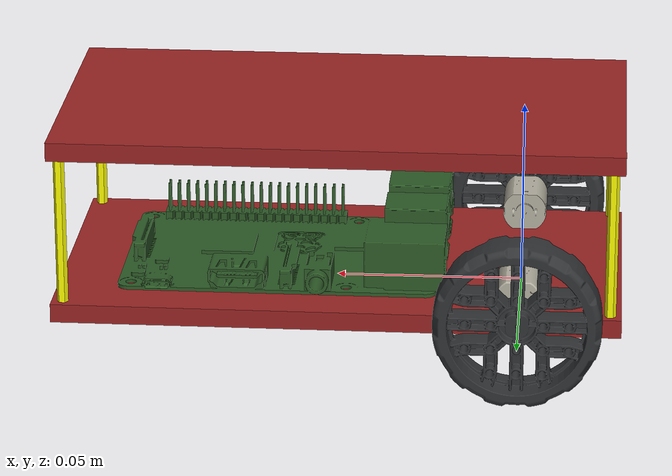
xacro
<?xml version="1.0" encoding="UTF-8"?>
<robot xmlns:xacro="http://www.ros.org/wiki/xacro">

    <xacro:include filename="$(find novelbot_description)/urdf/materials.xacro"/>
    <xacro:include filename="$(find novelbot_description)/urdf/novel_properties.xacro"/>
    <xacro:include filename="$(find novelbot_description)/urdf/inertial_macros.xacro"/>
    <xacro:include filename="$(find novelbot_description)/urdf/component_macros.xacro"/>

    <xacro:include filename="$(find novelbot_description)/urdf/base_layer.xacro"/>
    <xacro:include filename="$(find novelbot_description)/urdf/first_layer.xacro"/>
    <xacro:include filename="$(find novelbot_description)/urdf/electronics.xacro"/>

</robot>

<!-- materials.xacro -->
<robot xmlns:xacro="http://ros.org/wiki/xacro">
    <xacro:include filename="$(find novelbot_description)/urdf/colours.xacro"/>

    <xacro:macro name="material_orange">
        <material name="">
            <color rgba="${orange}"/>
        </material>
    </xacro:macro>

    <xacro:macro name="material_graphite_white">
        <material name="">
            <color rgba="${graphite_white}"/>
        </material>
    </xacro:macro>

    <xacro:macro name="material_white">
        <material name="">
            <color rgba="${white}"/>
        </material>
    </xacro:macro>

    <xacro:macro name="material_pebble_gray">
        <material name="">
            <color rgba="${pebble_gray}"/>
        </material>
    </xacro:macro>

    <xacro:macro name="material_dark_gray">
        <material name="">
            <color rgba="${dark_gray}"/>
        </material>
    </xacro:macro>

    <xacro:macro name="material_black">
        <material name="">
            <color rgba="${black}"/>
        </material>
    </xacro:macro>

    <xacro:macro name="material_signal_red">
        <material name="">
            <color rgba="${signal_red}"/>
        </material>
    </xacro:macro>

    <xacro:macro name="material_carmine_red">
        <material name="">
            <color rgba="${carmine_red}"/>
        </material>
    </xacro:macro>

    <xacro:macro name="material_ultramarine_blue">
        <material name="">
            <color rgba="${ultramarine_blue}"/>
        </material>
    </xacro:macro>

    <xacro:macro name="material_sky_blue">
        <material name="">
            <color rgba="${sky_blue}"/>
        </material>
    </xacro:macro>

    <xacro:macro name="material_leaf_green">
        <material name="">
            <color rgba="${leaf_green}"/>
        </material>
    </xacro:macro>

    <xacro:macro name="material_olive_green">
        <material name="">
            <color rgba="${olive_green}"/>
        </material>
    </xacro:macro>

    <xacro:macro name="material_gray_white">
        <material name="">
            <color rgba="${gray_white}"/>
        </material>
    </xacro:macro>

    <xacro:macro name="material_pure_white">
        <material name="">
            <color rgba="${pure_white}"/>
        </material>
    </xacro:macro>

    <xacro:macro name="material_yellow">
        <material name="">
            <color rgba="${yellow}"/>
        </material>
    </xacro:macro>

</robot>

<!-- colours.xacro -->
<robot xmlns:xacro="http://ros.org/wiki/xacro">

    <xacro:property name="orange" value="0.7372549 0.3490196 0.1607843 1" />

    <xacro:property name="graphite_white" value="0.7725490 0.7803922 0.7686275 1" />

    <xacro:property name="white" value="0.9254902 0.9254902 0.9058824 1" />

    <xacro:property name="pebble_gray" value="0.7058823 0.6901961 0.6313725 1" />

    <xacro:property name="dark_gray" value="0.3450980 0.3647059 0.3686275 1" />

    <xacro:property name="black" value="0.1882353 0.1960784 0.2039216 1" />

    <xacro:property name="signal_red" value="0.5960784 0.1372549 0.1372549 1" />

    <xacro:property name="carmine_red" value="0.5960784 0.1333333 0.1333333 1" />

    <xacro:property name="ultramarine_blue" value="0.1176471 0.2117647 0.4823529 1" />

    <xacro:property name="sky_blue" value="0.0431373 0.4823529 0.6901961 1" />

    <xacro:property name="leaf_green" value="0.1764706 0.3529412 0.1529412 1" />

    <xacro:property name="olive_green" value="${ 80/255} ${ 83/255} ${ 60/255} 1" />

    <xacro:property name="gray_white" value="0.8392157 0.8352941 0.7921569 1" />

    <xacro:property name="pure_white" value="0.9411765 0.9294118 0.8823529 1" />

    <xacro:property name="yellow" value="1 1 0 1" />

</robot>

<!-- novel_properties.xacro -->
<robot xmlns:xacro="http://www.ros.org/wiki/xacro">

    <xacro:property name="chassis_length" value="0.15"/>
    <xacro:property name="chassis_width" value="0.08"/>
    <xacro:property name="chassis_height" value="0.005"/>
    <xacro:property name="chassis_mass" value="0.5"/>

    <xacro:property name="motor_length" value="0.016"/>
    <xacro:property name="motor_width" value="0.012"/>
    <xacro:property name="motor_height" value="0.01"/>
    <xacro:property name="motor_gear_offset" value="0.003209"/>
    <xacro:property name="motor_mass" value="0.012"/>

    <xacro:property name="wheel_diameter" value="0.044"/>
    <xacro:property name="wheel_width" value="0.0133"/>
    <xacro:property name="wheel_mass" value="0.018"/>

    <xacro:property name="caster_height" value="0.13"/>
    <xacro:property name="caster_width" value="0.0156"/>
    <xacro:property name="caster_ball_diameter" value="0.011"/>
    <xacro:property name="caster_mass" value="0.01"/>

    <xacro:property name="standoff_height" value="0.04"/>
    <xacro:property name="standoff_width" value="0.003"/>
    <xacro:property name="standoff_mass" value="0.00875"/>

    <xacro:property name="rpi_lenght" value="0.085"/>
    <xacro:property name="rpi_width" value="0.056"/>
    <xacro:property name="rpi_height" value="0.017"/>
    <xacro:property name="rpi_mass" value="0.046"/>
</robot>

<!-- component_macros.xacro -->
<robot xmlns:xacro="http://www.ros.org/wiki/xacro">

    <xacro:macro name="standoff" params="name parent *origin">

        <joint name="${name}_joint" type="fixed">
            <xacro:insert_block name="origin"/>
            <parent link="${parent}" />
            <child link="${name}" />
        </joint>

        <link name="${name}">

            <visual>
                <origin xyz="0 0 0"/>
                <geometry>
                    <mesh filename="package://novelbot_description/meshes/visual/standoff_spacer.stl"/>
                </geometry>
                <xacro:material_yellow />
            </visual>

            <collision>
                <origin xyz="0 0 0"/>
                <geometry>
                    <mesh filename="package://novelbot_description/meshes/visual/standoff_spacer.stl"/>
                </geometry>
            </collision>

            <xacro:inertial_cylinder mass="${standoff_mass}" length="${standoff_width}" radius="${standoff_height}">
                <origin xyz="0 0 0"/>
            </xacro:inertial_cylinder>
        </link>
    </xacro:macro>

    <xacro:macro name="wheel_set" params="side parent *origin *axis">

        <!-- MOTOR -->
        <joint name="${side}motor_joint" type="fixed">
            <xacro:insert_block name="origin"/>
            <parent link="${parent}" />
            <child link="${side}_motor" />
        </joint>

        <link name="${side}_motor">
            <visual>
                <geometry>
                    <mesh filename="package://novelbot_description/meshes/visual/n20_motor.stl"/>
                </geometry>
                <xacro:material_pebble_gray />
            </visual>
            <collision>
                <origin xyz="0 0 0"/>
                <geometry>
                    <mesh filename="package://novelbot_description/meshes/visual/n20_motor.stl"/>
                </geometry>
            </collision>
            <xacro:inertial_cylinder mass="${motor_mass}" length="${motor_length}" radius="${motor_width}">
                <origin xyz="0 0 0"/>
            </xacro:inertial_cylinder>
        </link>

        <!-- WHEEL -->
        <joint name="${side}_wheel_joint" type="continuous">
            <origin xyz="0 ${motor_length+wheel_width/2 -0.001} ${motor_gear_offset}" rpy="0 0 0"/>
            <parent link="${side}_motor" />
            <child link="${side}_wheel" />
            <xacro:insert_block name="axis"/>
        </joint>

        <link name="${side}_wheel">
            <visual>
                <geometry>
                    <mesh filename="package://novelbot_description/meshes/visual/n20_motor_wheel.stl"/>
                </geometry>
                <xacro:material_black />
            </visual>
            <collision>
                <origin xyz="0 0 0"/>
                <geometry>
                    <mesh filename="package://novelbot_description/meshes/visual/n20_motor_wheel.stl"/>
                </geometry>
            </collision>
            <xacro:inertial_cylinder mass="${wheel_mass}" length="${wheel_width}" radius="${wheel_diameter/2}">
                <origin xyz="0 0 0"/>
            </xacro:inertial_cylinder>
        </link>
    </xacro:macro>

</robot>

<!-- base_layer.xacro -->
<robot xmlns:xacro="http://www.ros.org/wiki/xacro">

    <!-- BASE LINK -->
    <link name="base_link" />

    <!-- ************************ BASE LAYER ************************ -->
    <joint name="bl_joint" type="fixed">
        <origin xyz="-${wheel_diameter/2 + 0.005} 0 0"/>
        <parent link="base_link" />
        <child link="base_layer_chassis" />
    </joint>

    <link name="base_layer_chassis">
        <visual>
            <origin xyz="${chassis_length/2} 0 ${chassis_height/2}"/>
            <geometry>
                <box size="${chassis_length} ${chassis_width} ${chassis_height}"/>
            </geometry>
            <xacro:material_signal_red />
        </visual>
        <collision>
            <origin xyz="${chassis_length/2} 0 ${chassis_height/2}"/>
            <geometry>
                <box size="${chassis_length} ${chassis_width} ${chassis_height}"/>
            </geometry>
        </collision>
        <xacro:inertial_box mass="${chassis_mass}" x="${chassis_length}" y="${chassis_width}" z="${chassis_height}">
            <origin xyz="${chassis_length/2} 0 ${chassis_height/2}"/>
        </xacro:inertial_box>
    </link>

    <!-- ************************ WHEEL ************************ -->
    <!-- LEFT MOTOR -->
    <xacro:wheel_set side="left" parent="base_link">
        <origin xyz="0 ${chassis_width/2-motor_length+0.001} ${chassis_height + motor_height/2}" rpy="0 ${pi} 0"/>
        <axis xyz="0 1 0"/>
    </xacro:wheel_set>

    <!-- RIGHT MOTOR -->
    <xacro:wheel_set side="right" parent="base_link">
        <origin xyz="0 -${chassis_width/2-motor_length+0.001} ${chassis_height + motor_height/2}" rpy="${pi} 0 0"/>
        <axis xyz="0 -1 0"/>
    </xacro:wheel_set>

    <!-- ************************ CASTER ************************ -->
    <!-- CASTER BASE -->
    <joint name="caster_base_joint" type="fixed">
        <origin xyz="${chassis_length-wheel_diameter/2 -caster_width} 0 0" rpy="${pi/2} 0 ${pi/2}"/>
        <parent link="base_link" />
        <child link="caster_base" />
    </joint>

    <link name="caster_base">
        <visual>
            <origin xyz="0 0 0"/>
            <geometry>
                <mesh filename="package://novelbot_description/meshes/visual/caster_base.stl"/>
            </geometry>
            <xacro:material_white />
        </visual>
        <collision>
            <origin xyz="0 0 0"/>
            <geometry>
                <mesh filename="package://novelbot_description/meshes/visual/caster_base.stl"/>
            </geometry>
        </collision>
        <xacro:inertial_cylinder mass="${caster_mass/2}" length="${caster_height}" radius="${caster_width}">
            <origin xyz="0 0 0"/>
        </xacro:inertial_cylinder>
    </link>

    <!-- CASTER WHEEL -->
    <joint name="caster_wheel_joint" type="fixed">
        <origin xyz="0 0 0" rpy="0 0 0"/>
        <parent link="caster_base" />
        <child link="caster_wheel" />
    </joint>

    <link name="caster_wheel">
        <visual>
            <origin xyz="0 0 0"/>
            <geometry>
                <mesh filename="package://novelbot_description/meshes/visual/caster_wheel.stl"/>
            </geometry>
            <xacro:material_dark_gray />
        </visual>

        <collision>
            <origin xyz="0 0 0"/>
            <geometry>
                <mesh filename="package://novelbot_description/meshes/visual/caster_wheel.stl"/>
            </geometry>
        </collision>

        <xacro:inertial_sphere mass="${caster_mass/2}" radius="${caster_ball_diameter/2}">
            <origin xyz="0 0 0"/>
        </xacro:inertial_sphere>
    </link>

    <!-- ************************ STANDOFFS ************************ -->
    <xacro:standoff name="bl_standoff" parent="base_link">
        <origin xyz="-${wheel_diameter/2 + 0.005 - standoff_width} ${chassis_width/2-standoff_width} ${chassis_height}" rpy="0 0 0"/>
    </xacro:standoff>

    <xacro:standoff name="br_standoff" parent="base_link">
        <origin xyz="-${wheel_diameter/2 + 0.005 - standoff_width} -${chassis_width/2-standoff_width} ${chassis_height}" rpy="0 0 0"/>
    </xacro:standoff>

    <xacro:standoff name="fr_standoff" parent="base_link">
        <origin xyz="${chassis_length - wheel_diameter/2 -  0.005 - standoff_width} ${chassis_width/2-standoff_width} ${chassis_height}" rpy="0 0 0"/>
    </xacro:standoff>

    <xacro:standoff name="fl_standoff" parent="base_link">
        <origin xyz="${chassis_length - wheel_diameter/2 -  0.005 - standoff_width} -${chassis_width/2-standoff_width} ${chassis_height}" rpy="0 0 0"/>
    </xacro:standoff>

</robot>

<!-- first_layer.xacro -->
<robot xmlns:xacro="http://www.ros.org/wiki/xacro">

    <!-- CHASSIS -->
    <joint name="fl_joint" type="fixed">
        <origin xyz="0 0 ${standoff_height+chassis_height}"/>
        <parent link="base_link" />
        <child link="fl_link" />
    </joint>

    <link name="fl_link" />

    <!-- CHASSIS -->
    <joint name="fl_chassis_joint" type="fixed">
        <origin xyz="-${wheel_diameter/2 + 0.005} 0 0"/>
        <parent link="fl_link" />
        <child link="fl_chassis" />
    </joint>

    <link name="fl_chassis">
        <visual>
            <origin xyz="${chassis_length/2} 0 ${chassis_height/2}"/>
            <geometry>
                <box size="${chassis_length} ${chassis_width} ${chassis_height}"/>
            </geometry>
            <xacro:material_signal_red />
        </visual>
        <collision>
            <origin xyz="${chassis_length/2} 0 ${chassis_height/2}"/>
            <geometry>
                <box size="${chassis_length} ${chassis_width} ${chassis_height}"/>
            </geometry>
        </collision>
        <xacro:inertial_box mass="${chassis_mass}" x="${chassis_length}" y="${chassis_width}" z="${chassis_height}">
            <origin xyz="${chassis_length/2} 0 ${chassis_height/2}"/>
        </xacro:inertial_box>
    </link>

</robot>

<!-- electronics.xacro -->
<robot xmlns:xacro="http://www.ros.org/wiki/xacro">

    <!-- RPI 4 -->
    <joint name="rpi_joint" type="fixed">
        <origin xyz="${rpi_lenght+wheel_diameter/2} -${rpi_width/2} ${chassis_height}" rpy="0 0 ${pi/2}"/>
        <parent link="base_link" />
        <child link="rpi" />
    </joint>

    <link name="rpi">
        <visual>
            <origin xyz="0 0 0"/>
            <geometry>
                <mesh filename="package://novelbot_description/meshes/visual/raspberrypi_4.stl"/>
            </geometry>
            <xacro:material_leaf_green />
        </visual>
        <collision>
            <origin xyz="0 0 0"/>
            <geometry>
                <mesh filename="package://novelbot_description/meshes/visual/raspberrypi_4.stl"/>
            </geometry>
        </collision>
        <xacro:inertial_box mass="${rpi_mass}" x="${rpi_lenght}" y="${rpi_width}" z="${rpi_height}">
            <origin xyz="0 0 0"/>
        </xacro:inertial_box>
    </link>

</robot>
